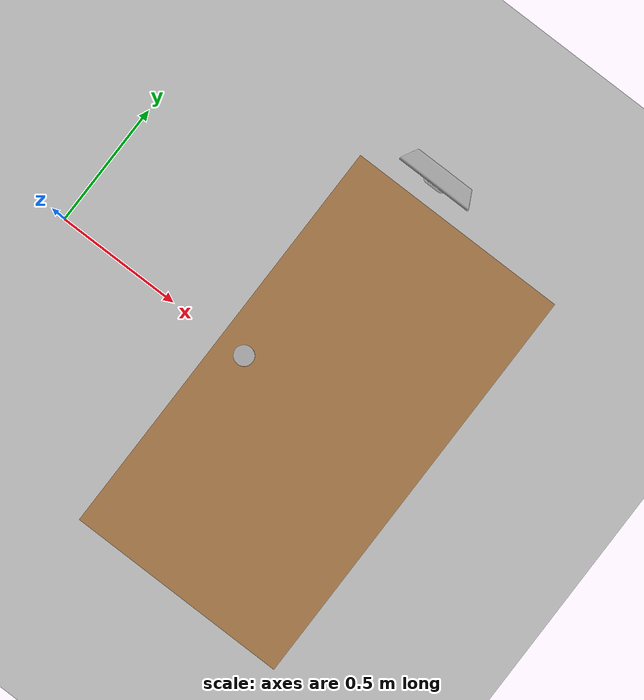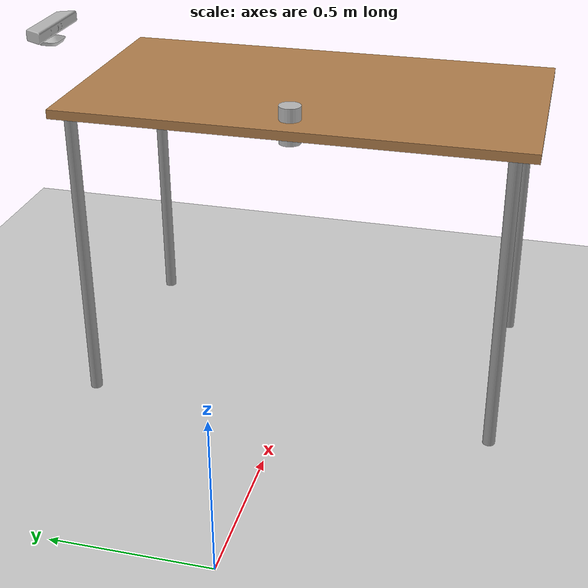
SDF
<?xml version="1.0" ?>
<sdf version="1.4">
  <world name="demo_world">

    <include>
      <uri>model://ground_plane</uri>
    </include>

    <include>
      <uri>model://sun</uri>
    </include>

    <include>
      <uri>model://table</uri>
      <pose>1.15 0 0 0 0 1.5708 </pose>
    </include>

    <include>
      <uri>model://beer</uri>
      <pose>0.85 0 1 0 0 0 </pose>
    </include>

    <include>
      <uri>model://kinect</uri>
      <pose>1 0.8 1.2 0 0 -1.5708</pose>
    </include>

    <physics type="ode">
      <real_time_update_rate>1000.0</real_time_update_rate>
      <gravity>
	        0.0 0.0 -9.81
      </gravity>
    </physics>

  </world>
</sdf>

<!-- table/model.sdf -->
<sdf version="1.5">
  <model name="table">
    <static>true</static>
    <link name="link">
      <collision name="surface">
        <pose>0 0 1.0 0 0 0</pose>
        <geometry>
          <box>
            <size>1.5 0.8 0.03</size>
          </box>
        </geometry>
        <surface>
          <friction>
            <ode>
              <mu>0.6</mu>
              <mu2>0.6</mu2>
            </ode>
          </friction>
        </surface>
      </collision>
      <visual name="visual1">
        <pose>0 0 1.0 0 0 0</pose>
        <geometry>
          <box>
            <size>1.5 0.8 0.03</size>
          </box>
        </geometry>
        <material>
          <script>
            <uri>model://media/materials/scripts/gazebo.material</uri>
            <name>Gazebo/Wood</name>
          </script>
        </material>
      </visual>
      <collision name="front_left_leg">
        <pose>0.68 0.38 0.5 0 0 0</pose>
        <geometry>
          <cylinder>
            <radius>0.02</radius>
            <length>1.0</length>
          </cylinder>
        </geometry>
      </collision>
      <visual name="front_left_leg">
        <pose>0.68 0.38 0.5 0 0 0</pose>
        <geometry>
          <cylinder>
            <radius>0.02</radius>
            <length>1.0</length>
          </cylinder>
        </geometry>
        <material>
          <script>
            <uri>model://media/materials/scripts/gazebo.material</uri>
            <name>Gazebo/Grey</name>
          </script>
        </material>
      </visual>
      <collision name="front_right_leg">
        <pose>0.68 -0.38 0.5 0 0 0</pose>
        <geometry>
          <cylinder>
            <radius>0.02</radius>
            <length>1.0</length>
          </cylinder>
        </geometry>
      </collision>
      <visual name="front_right_leg">
        <pose>0.68 -0.38 0.5 0 0 0</pose>
        <geometry>
          <cylinder>
            <radius>0.02</radius>
            <length>1.0</length>
          </cylinder>
        </geometry>
        <material>
          <script>
            <uri>model://media/materials/scripts/gazebo.material</uri>
            <name>Gazebo/Grey</name>
          </script>
        </material>
      </visual>
      <collision name="back_right_leg">
        <pose>-0.68 -0.38 0.5 0 0 0</pose>
        <geometry>
          <cylinder>
            <radius>0.02</radius>
            <length>1.0</length>
          </cylinder>
        </geometry>
      </collision>
      <visual name="back_right_leg">
        <pose>-0.68 -0.38 0.5 0 0 0</pose>
        <geometry>
          <cylinder>
            <radius>0.02</radius>
            <length>1.0</length>
          </cylinder>
        </geometry>
        <material>
          <script>
            <uri>model://media/materials/scripts/gazebo.material</uri>
            <name>Gazebo/Grey</name>
          </script>
        </material>
      </visual>
      <collision name="back_left_leg">
        <pose>-0.68 0.38 0.5 0 0 0</pose>
        <geometry>
          <cylinder>
            <radius>0.02</radius>
            <length>1.0</length>
          </cylinder>
        </geometry>
      </collision>
      <visual name="back_left_leg">
        <pose>-0.68 0.38 0.5 0 0 0</pose>
        <geometry>
          <cylinder>
            <radius>0.02</radius>
            <length>1.0</length>
          </cylinder>
        </geometry>
        <material>
          <script>
            <uri>model://media/materials/scripts/gazebo.material</uri>
            <name>Gazebo/Grey</name>
          </script>
        </material>
      </visual>
    </link>
  </model>
</sdf>

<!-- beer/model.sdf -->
<sdf version='1.4'>
  <model name="beer">
    <link name='link'>
      <pose>0 0 0 0 0 0</pose>
      <inertial>
        <mass>0.390</mass>
        <inertia>
          <ixx>0.00058</ixx>
          <ixy>0</ixy>
          <ixz>0</ixz>
          <iyy>0.00058</iyy>
          <iyz>0</iyz>
          <izz>0.00025</izz>
        </inertia>
      </inertial>
      <collision name='collision'>
        <geometry>
          <cylinder>
            <radius>0.03500</radius>
            <length>0.12000</length>
          </cylinder>
        </geometry>
      </collision>

      <visual name='visual'>
        <geometry>
          <cylinder>
            <radius>0.03500</radius>
            <length>0.12000</length>
          </cylinder>
        </geometry>

        <material>
          <script>
            <uri>model://beer/materials/scripts</uri>
            <uri>model://beer/materials/textures</uri>
            <name>Beer/Diffuse</name>
          </script>
        </material>
      </visual>
    </link>
  </model>
</sdf>

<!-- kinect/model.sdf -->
<sdf version="1.4">
  <model name="kinect">

    <static>true</static>

    <link name="kinect_link">

      <inertial>
        <mass>0.1</mass>
      </inertial>

      <collision name="kinect_collision">
        <geometry>
          <box>
            <size>0.073000 0.276000 0.072000</size>
          </box>
        </geometry>
      </collision>

      <visual name="kinect_mesh">
        <cast_shadows> true </cast_shadows>
        <geometry>
          <mesh>
            <uri>model://kinect/meshes/kinect.dae</uri>
          </mesh>
        </geometry>
      </visual>

      <sensor name="kinect_camera" type="depth">
        <always_on>1</always_on>
        <visualize>true</visualize>
        <camera>
          <horizontal_fov>1.047</horizontal_fov>
          <image>
            <width>640</width>
            <height>480</height>
            <format>R8G8B8</format>
          </image>
          <clip>
            <near>0.1</near>
            <far>100</far>
          </clip>
        </camera>

        <plugin name="kinect" filename="/opt/ros/indigo/lib/libgazebo_ros_openni_kinect.so
">
                <alwaysOn>true</alwaysOn>
                <updateRate>10.0</updateRate>
                <cameraName>camera</cameraName>
                <frameName>openni_camera_link</frameName>
                <imageTopicName>rgb/image_raw</imageTopicName>
                <depthImageTopicName>depth/image_raw</depthImageTopicName>
                <pointCloudTopicName>depth/points</pointCloudTopicName>
                <cameraInfoTopicName>rgb/camera_info</cameraInfoTopicName>
                <depthImageCameraInfoTopicName>depth/camera_info</depthImageCameraInfoTopicName>
                <pointCloudCutoff>0.4</pointCloudCutoff>
                    <hackBaseline>0.07</hackBaseline>
                    <distortionK1>0.0</distortionK1>
                    <distortionK2>0.0</distortionK2>
                    <distortionK3>0.0</distortionK3>
                    <distortionT1>0.0</distortionT1>
                    <distortionT2>0.0</distortionT2>
                <CxPrime>0.0</CxPrime>
                <Cx>0.0</Cx>
                <Cy>0.0</Cy>
                <focalLength>0.0</focalLength>
        </plugin>

      </sensor>

  </link>

</model>

</sdf>
